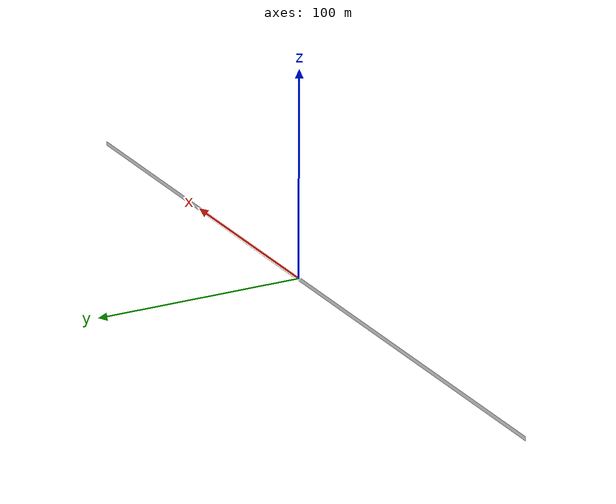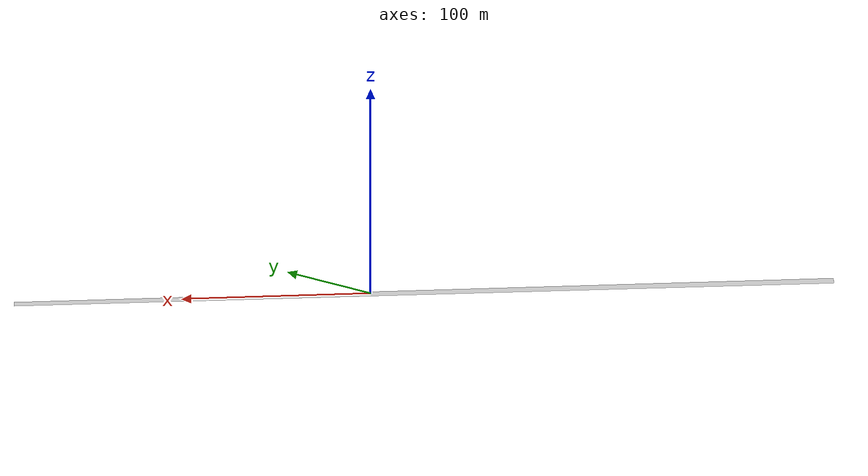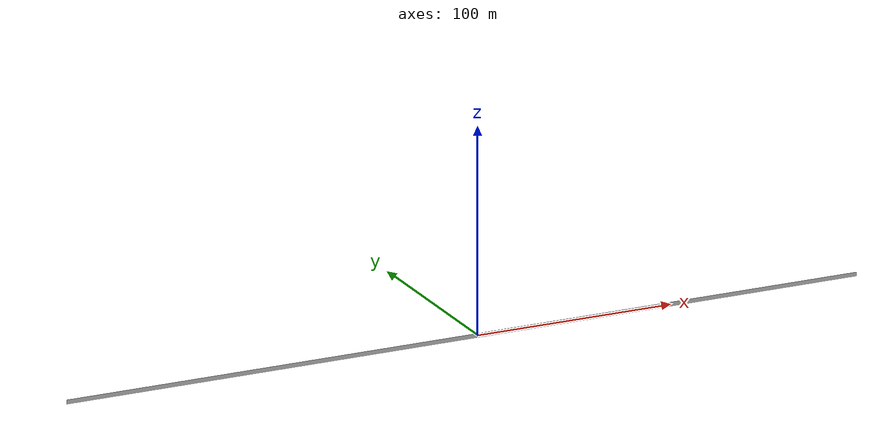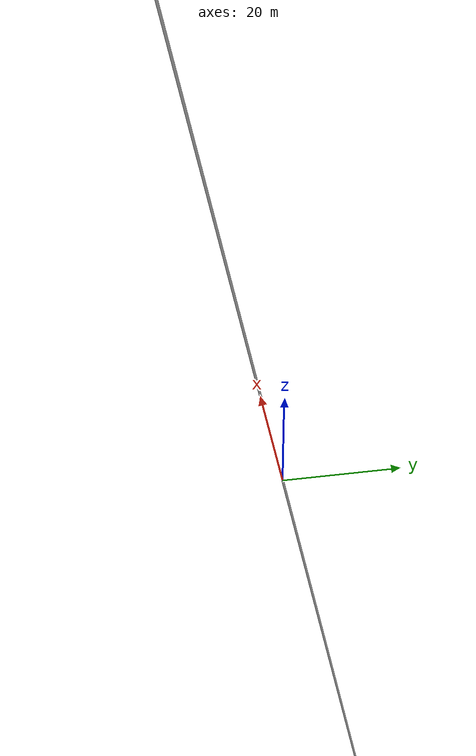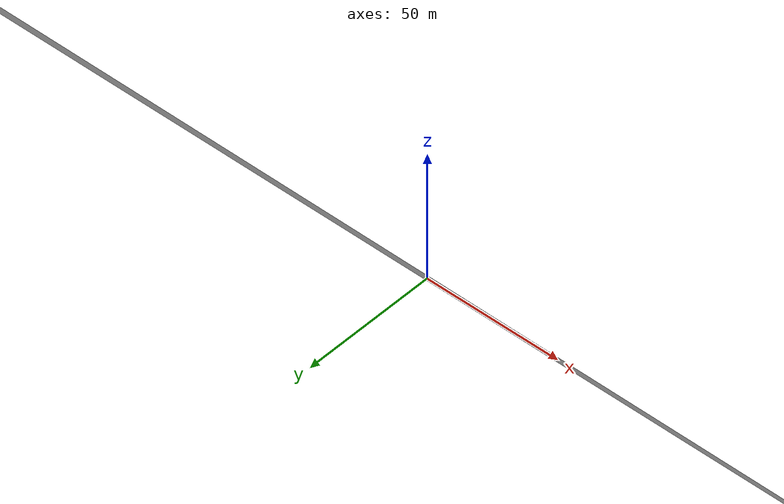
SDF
<?xml version="1.0" ?>
<sdf version="1.6">
  <model name="harita">
    <static>true</static>
    <link name="link">
      <collision name="collision">
        <pose>0 0 0 0 0 0</pose>
        <geometry>
          <mesh>
            <scale>20 20 0.1</scale>
            <uri>model://harita/meshes/harita.obj</uri>
          </mesh>
        </geometry>
      </collision>
      <visual name="visual">
        <pose>0 0 0 0 0 0</pose>
        <geometry>
          <mesh>
            <scale>20 20 0.1</scale>
            <uri>model://harita/meshes/harita.obj</uri>
          </mesh>
        </geometry>
      </visual>
    </link>
  </model>
</sdf>
